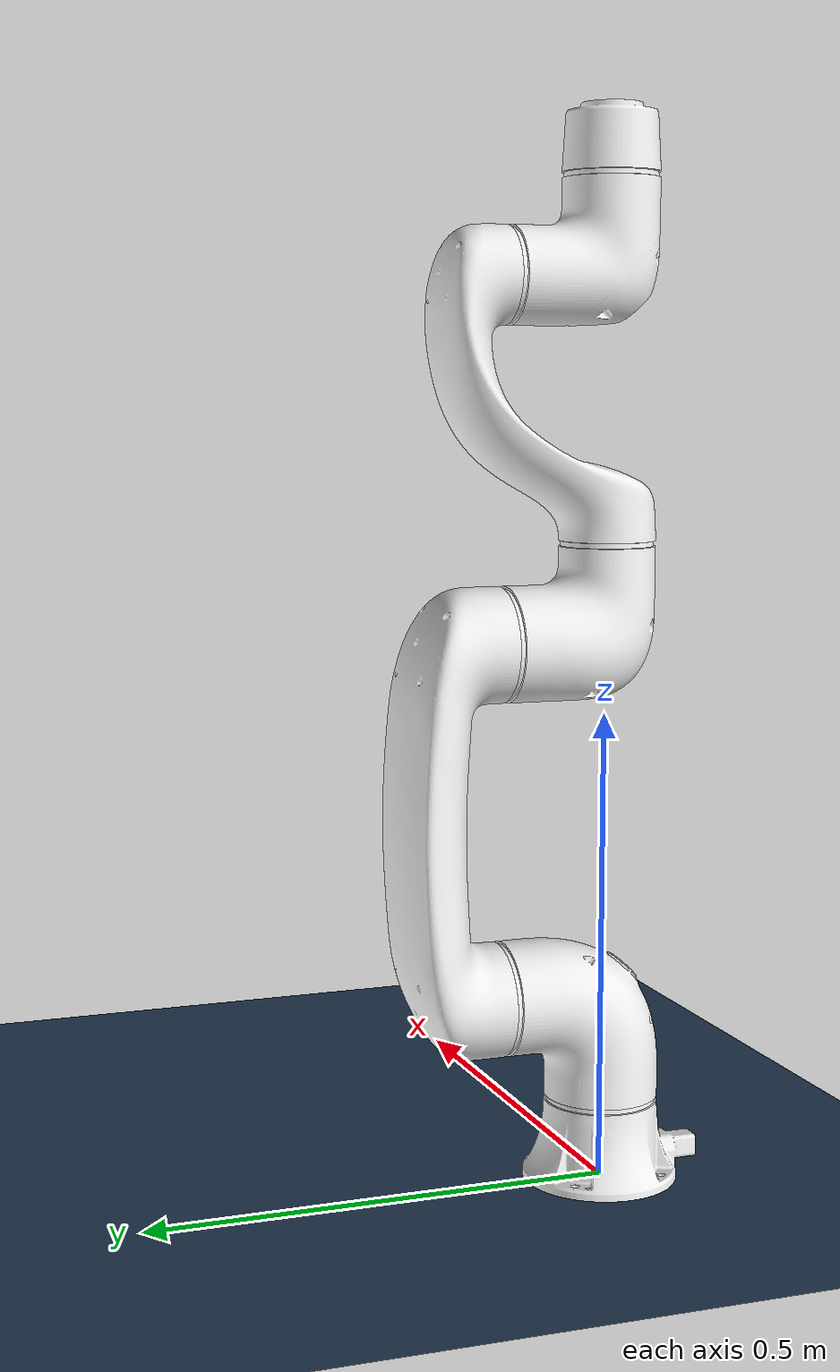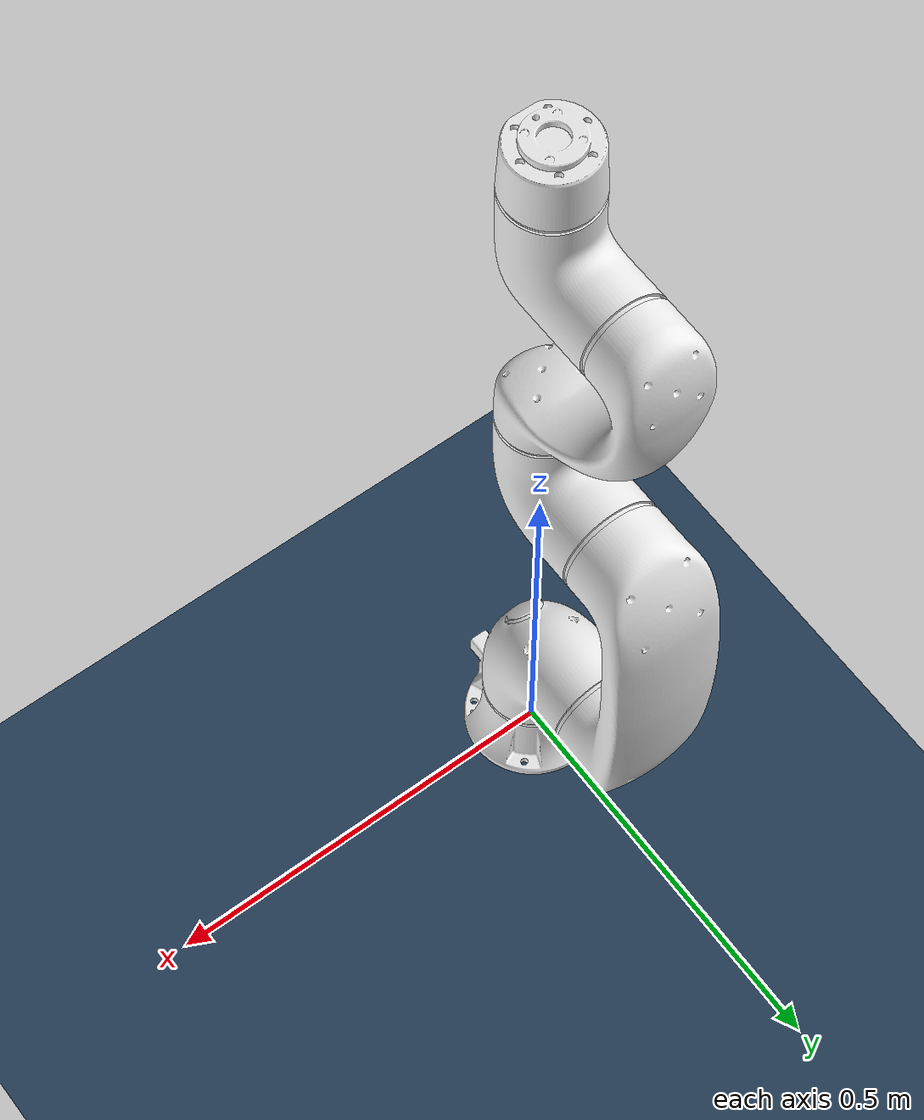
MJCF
<?xml version='1.0' encoding='utf-8'?>
<mujoco model="e0509 scene">
  <include file="e0509.xml" />
  <compiler angle="radian" meshdir="../" />

  <statistic center="0.3 0 0.4" extent="1" />

  <visual>
    <headlight diffuse="0.6 0.6 0.6" ambient="0.3 0.3 0.3" specular="0 0 0" />
    <rgba haze="0.15 0.25 0.35 1" />
    <global azimuth="120" elevation="-20" />
  </visual>

  <asset>
    <texture type="skybox" builtin="gradient" rgb1="0.3 0.5 0.7" rgb2="0 0 0" width="512" height="3072" />
    <texture type="2d" name="groundplane" builtin="checker" mark="edge" rgb1="0.2 0.3 0.4" rgb2="0.1 0.2 0.3" markrgb="0.8 0.8 0.8" width="300" height="300" />
    <material name="groundplane" texture="groundplane" texuniform="true" texrepeat="5 5" reflectance="0.2" />
  </asset>

  <worldbody>
    <light pos="0 0 1.5" dir="0 0 -1" directional="true" />
    <geom name="floor" size="0 0 0.05" type="plane" material="groundplane" />
  </worldbody>

</mujoco>

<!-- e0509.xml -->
<mujoco model="e0509">

  <asset>
    <mesh name="E0509_0_0" file="e0509/assets/E0509_0_0.stl" scale="0.001 0.001 0.001"/>
    <mesh name="E0509_1_1" file="e0509/assets/E0509_1_1.stl" scale="0.001 0.001 0.001"/>
    <mesh name="E0509_1_2" file="e0509/assets/E0509_1_2.stl" scale="0.001 0.001 0.001"/>
    <mesh name="E0509_1_3" file="e0509/assets/E0509_1_3.stl" scale="0.001 0.001 0.001"/>
    <mesh name="E0509_1_4" file="e0509/assets/E0509_1_4.stl" scale="0.001 0.001 0.001"/>
    <mesh name="E0509_2_1" file="e0509/assets/E0509_2_1.stl" scale="0.001 0.001 0.001"/>
    <mesh name="E0509_2_2" file="e0509/assets/E0509_2_2.stl" scale="0.001 0.001 0.001"/>
    <mesh name="E0509_3_1" file="e0509/assets/E0509_3_1.stl" scale="0.001 0.001 0.001"/>
    <mesh name="E0509_3_2" file="e0509/assets/E0509_3_2.stl" scale="0.001 0.001 0.001"/>
    <mesh name="E0509_4_1" file="e0509/assets/E0509_4_1.stl" scale="0.001 0.001 0.001"/>
    <mesh name="E0509_4_2" file="e0509/assets/E0509_4_2.stl" scale="0.001 0.001 0.001"/>
    <mesh name="E0509_5_1" file="e0509/assets/E0509_5_1.stl" scale="0.001 0.001 0.001"/>
    <mesh name="E0509_5_2" file="e0509/assets/E0509_5_2.stl" scale="0.001 0.001 0.001"/>
    <mesh name="E0509_6_1" file="e0509/assets/E0509_6_1.stl" scale="0.001 0.001 0.001"/>

    <material name="white" rgba="0.941 0.941 0.941 1"/>
  </asset>

  <worldbody>
    <geom type="mesh" contype="1" conaffinity="1" group="1" density="0" mesh="E0509_0_0" material="white"/>
    <body name="link_1" pos="0 0 0.2045">
      <inertial pos="1e-06 0.049633 -0.049635" quat="0.929158 -0.369673 0.00062326 0.00249849" mass="5.75" diaginertia="0.046214 0.0458051 0.0177669"/>
      <joint name="joint_1" pos="0 0 0" axis="0 0 1" range="-6.2832 6.2832" actuatorfrcrange="-194 194" damping="700"/>
      <geom type="mesh" contype="1" conaffinity="1" group="1" density="0" mesh="E0509_1_1" material="white"/>
      <geom type="mesh" contype="1" conaffinity="1" group="1" density="0" mesh="E0509_1_2" material="white"/>
      <geom type="mesh" contype="1" conaffinity="1" group="1" density="0" mesh="E0509_1_3" material="white"/>
      <geom type="mesh" contype="1" conaffinity="1" group="1" density="0" mesh="E0509_1_4" material="white"/>
      <body name="link_2" quat="0.499998 -0.500002 -0.5 -0.5">
        <inertial pos="0.18647 0 0.17311" quat="0.000354598 0.707123 0.000285146 0.707091" mass="3.461" diaginertia="0.094721 0.091203 0.012039"/>
        <joint name="joint_2" pos="0 0 0" axis="0 0 1" range="-6.2832 6.2832" actuatorfrcrange="-194 194" damping="700"/>
        <geom type="mesh" contype="1" conaffinity="1" group="1" density="0" mesh="E0509_2_1" material="white"/>
        <geom type="mesh" contype="1" conaffinity="1" group="1" density="0" mesh="E0509_2_2" material="white"/>
        <body name="link_3" pos="0.373 0 0" quat="0.707105 0 0 0.707108">
          <inertial pos="1.2e-05 -0.02919 0.062355" quat="0.949876 -0.312625 0.000273945 0.0011091" mass="4.582" diaginertia="0.032606 0.0301114 0.0133836"/>
          <joint name="joint_3" pos="0 0 0" axis="0 0 1" range="-2.7053 2.7053" actuatorfrcrange="-194 194" damping="700"/>
          <geom type="mesh" contype="1" conaffinity="1" group="1" density="0" mesh="E0509_3_1" material="white"/>
          <geom type="mesh" contype="1" conaffinity="1" group="1" density="0" mesh="E0509_3_2" material="white"/>
          <body name="link_4" pos="0 -0.373 0" quat="0.707105 0.707108 0 0">
            <inertial pos="4e-06 0.095573 -0.12813" quat="0.679162 -0.19789 0.197403 0.678683" mass="2.207" diaginertia="0.0384722 0.03547 0.0119838"/>
            <joint name="joint_4" pos="0 0 0" axis="0 0 1" range="-6.2832 6.2832" actuatorfrcrange="-66 66" damping="600"/>
            <geom type="mesh" contype="1" conaffinity="1" group="1" density="0" mesh="E0509_4_1" material="white"/>
            <geom type="mesh" contype="1" conaffinity="1" group="1" density="0" mesh="E0509_4_2" material="white"/>
            <body name="link_5" quat="0.707105 -0.707108 0 0">
              <inertial pos="-3e-06 -0.038009 0.043841" quat="0.95261 -0.304186 0.000232644 0.00218627" mass="3.545" diaginertia="0.023526 0.0226775 0.00998646"/>
              <joint name="joint_5" pos="0 0 0" axis="0 0 1" range="-6.2832 6.2832" actuatorfrcrange="-66 66" damping="600"/>
              <geom type="mesh" contype="1" conaffinity="1" group="1" density="0" mesh="E0509_5_1" material="white"/>
              <geom type="mesh" contype="1" conaffinity="1" group="1" density="0" mesh="E0509_5_2" material="white"/>
              <body name="link_6" pos="0 -0.1725 0" quat="0.707105 0.707108 0 0">
                <inertial pos="5.4e-05 -0.000114 -0.032091" quat="0.491303 0.509421 -0.489812 0.509113" mass="0.721" diaginertia="0.00794241 0.0048274 0.00467698"/>
                <joint name="joint_6" pos="0 0 0" axis="0 0 1" range="-6.2832 6.2832" actuatorfrcrange="-66 66" damping="600"/>
                <geom type="mesh" contype="1" conaffinity="1" group="1" density="0" mesh="E0509_6_1" material="white"/>
              </body>
            </body>
          </body>
        </body>
      </body>
    </body>
  </worldbody>

	<actuator>
		<position joint="joint_1" kp="10" kv="1" ctrlrange="-6.2832 6.2832"/>
		<position joint="joint_2" kp="10" kv="1" ctrlrange="-6.2832 6.2832"/>
		<position joint="joint_3" kp="10" kv="1" ctrlrange="-2.7053 2.7053"/>
		<position joint="joint_4" kp="10" kv="1" ctrlrange="-6.2832 6.2832"/>
		<position joint="joint_5" kp="10" kv="1" ctrlrange="-2.7053 2.7053"/>
		<position joint="joint_6" kp="10" kv="1" ctrlrange="-6.2832 6.2832"/>
	</actuator>

  <contact>
    <exclude body1="link_4" body2="link_6"/>
  </contact>
</mujoco>
